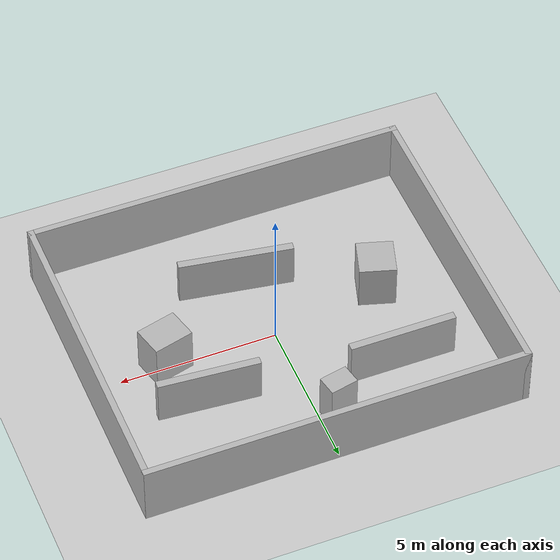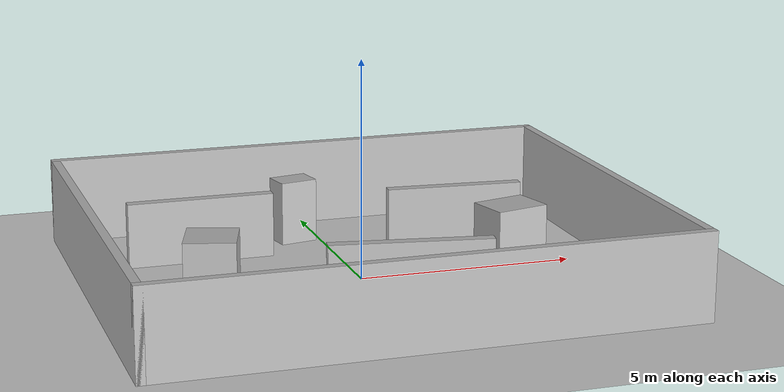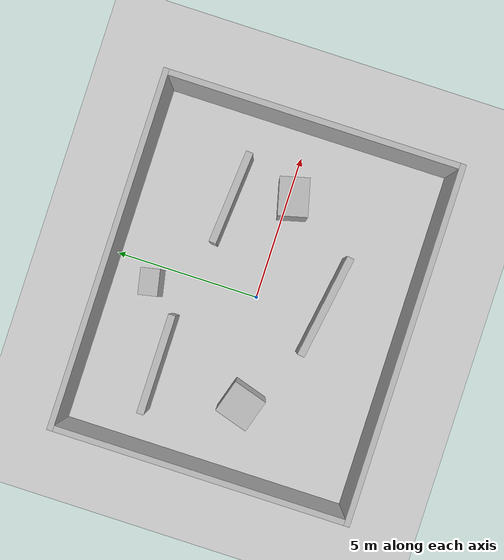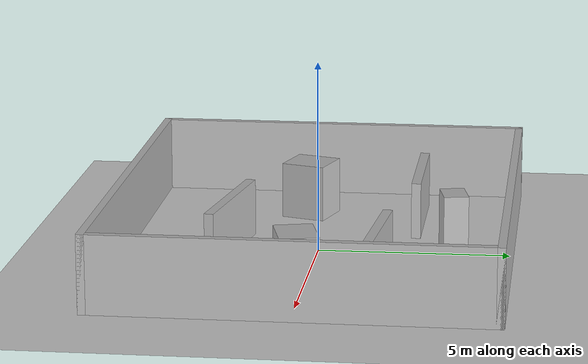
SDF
<sdf version="1.7">
  <world name="p2c_holdout917">
    <plugin name="gazebo_ros_state" filename="libgazebo_ros_state.so">
      <ros>
        <namespace>/gazebo</namespace>
      </ros>
      <update_rate>10.0</update_rate>
    </plugin>
    <include>
      <uri>model://sun</uri>
    </include>
    <include>
      <uri>model://ground_plane</uri>
    </include>
    <gravity>0 0 -9.8</gravity>
    <physics type="ode">
      <max_step_size>.001</max_step_size>
      <real_time_factor>1</real_time_factor>
      <real_time_update_rate>1000</real_time_update_rate>
    </physics>
    <model name="p2c917_static_geometry">
      <static>true</static>
      <link name="geometry">
        <collision name="north">
          <pose>0 5 1 0 0 0</pose>
          <geometry>
            <box>
              <size>12.2 0.2 2</size>
            </box>
          </geometry>
        </collision>
        <visual name="north_visual">
          <pose>0 5 1 0 0 0</pose>
          <geometry>
            <box>
              <size>12.2 0.2 2</size>
            </box>
          </geometry>
        </visual>
        <collision name="south">
          <pose>0 -5 1 0 0 0</pose>
          <geometry>
            <box>
              <size>12.2 0.2 2</size>
            </box>
          </geometry>
        </collision>
        <visual name="south_visual">
          <pose>0 -5 1 0 0 0</pose>
          <geometry>
            <box>
              <size>12.2 0.2 2</size>
            </box>
          </geometry>
        </visual>
        <collision name="east">
          <pose>6 0 1 0 0 0</pose>
          <geometry>
            <box>
              <size>0.2 10.2 2</size>
            </box>
          </geometry>
        </collision>
        <visual name="east_visual">
          <pose>6 0 1 0 0 0</pose>
          <geometry>
            <box>
              <size>0.2 10.2 2</size>
            </box>
          </geometry>
        </visual>
        <collision name="west">
          <pose>-6 0 1 0 0 0</pose>
          <geometry>
            <box>
              <size>0.2 10.2 2</size>
            </box>
          </geometry>
        </collision>
        <visual name="west_visual">
          <pose>-6 0 1 0 0 0</pose>
          <geometry>
            <box>
              <size>0.2 10.2 2</size>
            </box>
          </geometry>
        </visual>
        <collision name="upper_left_partition">
          <pose>-3.1 2.45 0.75 0 0 0</pose>
          <geometry>
            <box>
              <size>3.4 0.25 1.5</size>
            </box>
          </geometry>
        </collision>
        <visual name="upper_left_partition_visual">
          <pose>-3.1 2.45 0.75 0 0 0</pose>
          <geometry>
            <box>
              <size>3.4 0.25 1.5</size>
            </box>
          </geometry>
        </visual>
        <collision name="upper_right_partition">
          <pose>2.85 1.8 0.75 0 0 -0.08</pose>
          <geometry>
            <box>
              <size>3.2 0.25 1.5</size>
            </box>
          </geometry>
        </collision>
        <visual name="upper_right_partition_visual">
          <pose>2.85 1.8 0.75 0 0 -0.08</pose>
          <geometry>
            <box>
              <size>3.2 0.25 1.5</size>
            </box>
          </geometry>
        </visual>
        <collision name="lower_staggered_partition">
          <pose>0.4 -2.25 0.75 0 0 -0.16</pose>
          <geometry>
            <box>
              <size>3.6 0.25 1.5</size>
            </box>
          </geometry>
        </collision>
        <visual name="lower_staggered_partition_visual">
          <pose>0.4 -2.25 0.75 0 0 -0.16</pose>
          <geometry>
            <box>
              <size>3.6 0.25 1.5</size>
            </box>
          </geometry>
        </visual>
        <collision name="west_block">
          <pose>-3.55 -0.6 0.75 0 0 -0.3</pose>
          <geometry>
            <box>
              <size>1.15 1.2 1.5</size>
            </box>
          </geometry>
        </collision>
        <visual name="west_block_visual">
          <pose>-3.55 -0.6 0.75 0 0 -0.3</pose>
          <geometry>
            <box>
              <size>1.15 1.2 1.5</size>
            </box>
          </geometry>
        </visual>
        <collision name="east_block">
          <pose>3.5 -0.15 0.75 0 0 0.25</pose>
          <geometry>
            <box>
              <size>1.3 1.0 1.5</size>
            </box>
          </geometry>
        </collision>
        <visual name="east_block_visual">
          <pose>3.5 -0.15 0.75 0 0 0.25</pose>
          <geometry>
            <box>
              <size>1.3 1.0 1.5</size>
            </box>
          </geometry>
        </visual>
        <collision name="upper_pillar">
          <pose>-0.6 3.5 0.75 0 0 0.2</pose>
          <geometry>
            <box>
              <size>0.9 0.65 1.5</size>
            </box>
          </geometry>
        </collision>
        <visual name="upper_pillar_visual">
          <pose>-0.6 3.5 0.75 0 0 0.2</pose>
          <geometry>
            <box>
              <size>0.9 0.65 1.5</size>
            </box>
          </geometry>
        </visual>
      </link>
    </model>
  </world>
</sdf>
